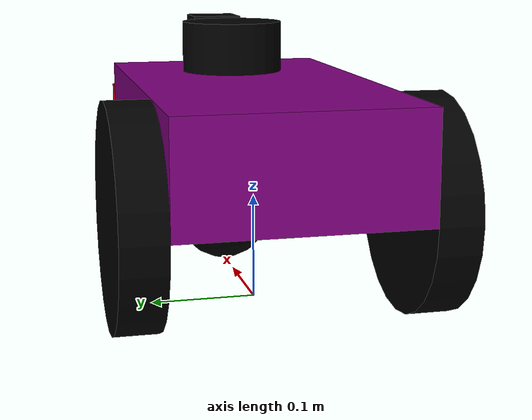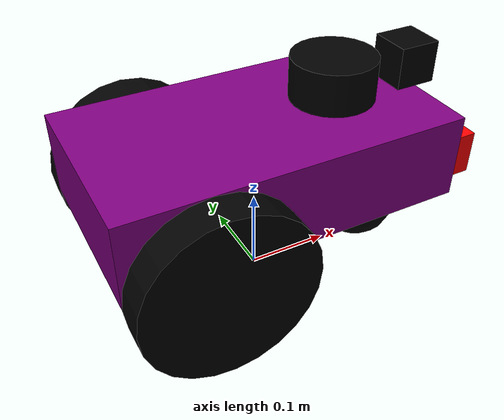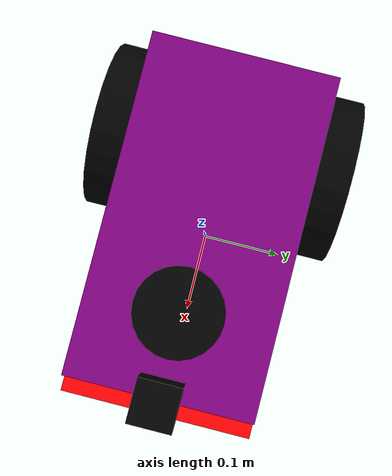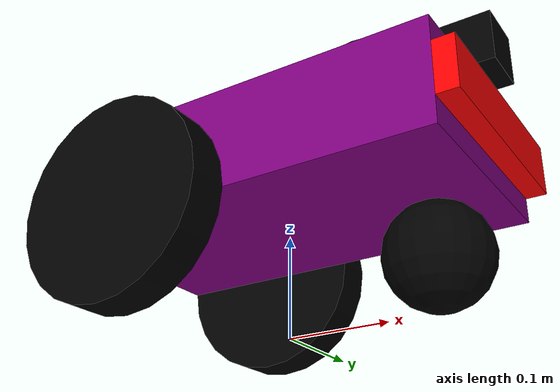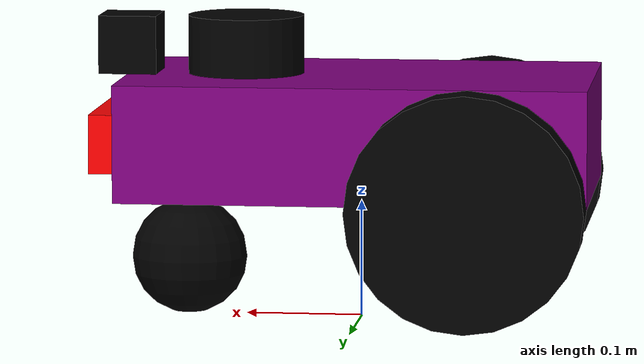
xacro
<?xml version="1.0" ?>
<robot name="com760Bot" xmlns:xacro="https://www.ros.org/wiki/xacro" >

  <xacro:property name="prefix" value="Group6Bot_0"/>

  <material name="purple"><color rgba="0.5 0 0.5 1"/></material>
  <material name="black"><color rgba="0.0 0.0 0.0 1.0"/></material>
  <material name="red"><color rgba="1.0 0.0 0.0 1.0"/></material>

  <xacro:macro name="cylinder_inertia" params="m r h">
    <inertial>
      <mass value="${m}"/>
      <inertia
        ixx="${(m/12)*(3*r*r+h*h)}" ixy="0" ixz="0"
        iyy="${(m/12)*(3*r*r+h*h)}" iyz="0"
        izz="${(m/2)*(r*r)}"/>
    </inertial>
  </xacro:macro>

  <xacro:macro name="box_inertia" params="m w h d">
    <inertial>
      <mass value="${m}"/>
      <inertia
        ixx="${(m/12)*(h*h+d*d)}" ixy="0" ixz="0"
        iyy="${(m/12)*(w*w+d*d)}" iyz="0"
        izz="${(m/12)*(w*w+h*h)}"/>
    </inertial>
  </xacro:macro>

  <link name="${prefix}/base_footprint"/>

  <joint name="base_joint" type="fixed">
    <parent link="${prefix}/base_footprint"/>
    <child link="${prefix}/base_link"/>
    <origin xyz="0 0 0.16" rpy="0 0 0"/>
  </joint>

  <link name="${prefix}/base_link">
    <visual>
      <geometry><box size="0.4 0.22 0.1"/></geometry>
      <material name="purple"/>
    </visual>

    <!-- This is where the collision geometry is used for the physics and the contacts.
         The name attribute is helpful for debugging purposes. -->
    <collision name="base_collision">
      <geometry><box size="0.4 0.22 0.1"/></geometry>
    </collision>

    <!-- The inertia is approximately 5kg for the chassis, which is matching the dimensions. -->
    <xacro:box_inertia m="5.0" w="0.4" h="0.1" d="0.22"/>
  </link>

  <link name="${prefix}/bumper_link">
    <visual>
      <geometry><box size="0.02 0.22 0.05"/></geometry>
      <material name="red"/>
    </visual>
    <collision name="bumper_collision">
      <geometry><box size="0.02 0.22 0.05"/></geometry>
    </collision>
    <xacro:box_inertia m="0.1" w="0.02" h="0.05" d="0.22"/>
  </link>

  <joint name="${prefix}/bumper_joint" type="fixed">
    <parent link="${prefix}/base_link"/>
    <child link="${prefix}/bumper_link"/>
    <origin xyz="0.21 0 0" rpy="0 0 0"/>
  </joint>

  <link name="${prefix}/left_wheel">
    <visual>
      <geometry><cylinder length="0.04" radius="0.1"/></geometry>
      <material name="black"/>
    </visual>
    <collision>
      <geometry><cylinder length="0.04" radius="0.1"/></geometry>
    </collision>
    <xacro:cylinder_inertia m="0.5" r="0.1" h="0.04"/>
  </link>

  <joint name="${prefix}/wheel_left_joint" type="continuous">
    <parent link="${prefix}/base_link"/>
    <child link="${prefix}/left_wheel"/>
    <origin xyz="-0.1 0.13 -0.05" rpy="-1.5708 0 0"/>
    <axis xyz="0 0 1"/>
  </joint>

  <!-- This is the Right wheel being defined with the same structure but it is mirrored in Y axis. -->
  <link name="${prefix}/right_wheel">
    <visual>
      <geometry><cylinder length="0.04" radius="0.1"/></geometry>
      <material name="black"/>
    </visual>
    <collision>
      <geometry><cylinder length="0.04" radius="0.1"/></geometry>
    </collision>
    <xacro:cylinder_inertia m="0.5" r="0.1" h="0.04"/>
  </link>

  <joint name="${prefix}/wheel_right_joint" type="continuous">
    <parent link="${prefix}/base_link"/>
    <child link="${prefix}/right_wheel"/>
    <origin xyz="-0.1 -0.13 -0.05" rpy="-1.5708 0 0"/>
    <axis xyz="0 0 1"/>
  </joint>

  <link name="${prefix}/caster_link">
    <visual>
      <geometry><sphere radius="0.05"/></geometry>
      <material name="black"/>
    </visual>
    <collision>
      <geometry><sphere radius="0.05"/></geometry>
    </collision>

    <!-- This is the inertial being manually specified. -->
    <inertial>
      <mass value="0.1"/>
      <inertia ixx="0.001" ixy="0" ixz="0" iyy="0.001" iyz="0" izz="0.001"/>
    </inertial>
  </link>

  <joint name="${prefix}/caster_joint" type="fixed">
    <parent link="${prefix}/base_link"/>
    <child link="${prefix}/caster_link"/>
    <origin xyz="0.15 0 -0.11" rpy="0 0 0"/>
  </joint>

  <link name="${prefix}/base_scan">
    <visual>
      <geometry><cylinder length="0.05" radius="0.05"/></geometry>
      <material name="black"/>
    </visual>
    <collision>
      <geometry><cylinder length="0.05" radius="0.05"/></geometry>
    </collision>
    <xacro:cylinder_inertia m="0.1" r="0.05" h="0.05"/>
  </link>

  <joint name="${prefix}/scan_joint" type="fixed">
    <parent link="${prefix}/base_link"/>
    <child link="${prefix}/base_scan"/>
    <!-- This is where the lidar is mounted close to the front/top of the base_link. The frame for published LaserScan is later set to the ${prefix}/base_scan. -->
    <origin xyz="0.1 0 0.075" rpy="0 0 0"/>
  </joint>

  <!-- This is where the camera_link is defined, it is a cube for the camera body and the real camera optics are defined in the Gazebo camera sensor. -->
  <link name="${prefix}/camera_link">
    <visual>
      <geometry><box size="0.05 0.05 0.05"/></geometry>
      <material name="black"/>
    </visual>
    <collision>
      <geometry><box size="0.05 0.05 0.05"/></geometry>
    </collision>
    <xacro:box_inertia m="0.1" w="0.05" h="0.05" d="0.05"/>
  </link>

  <joint name="${prefix}/camera_joint" type="fixed">
    <parent link="${prefix}/base_link"/>
    <child link="${prefix}/camera_link"/>
    <origin xyz="0.2 0 0.075" rpy="0 0 0"/>
  </joint>

  <!-- This area is where the Gazebo's specific extensions are defined. -->
  <gazebo reference="${prefix}/camera_link">
    <material>Gazebo/Black</material>

    <sensor type="camera" name="robot_camera">
      <update_rate>30.0</update_rate>

      <camera name="head">
        <horizontal_fov>1.3962634</horizontal_fov> <!-- ~80 degrees in radians being defined. -->

        <image>
          <width>640</width>
          <height>480</height>
          <format>R8G8B8</format>
        </image>

        <!-- This is used for clipping planes which are used for rendering purposes. -->
        <clip>
          <near>0.02</near>
          <far>300</far>
        </clip>

        <!-- This is used for adding gaussian noise, to make the perception more realistic. -->
        <noise>
          <type>gaussian</type>
          <mean>0.0</mean>
          <stddev>0.007</stddev>
        </noise>
      </camera>

      <plugin name="camera_controller" filename="libgazebo_ros_camera.so">
        <alwaysOn>true</alwaysOn>
        <updateRate>0.0</updateRate> <!-- 0.0 means "as fast as possible". -->
        <cameraName>${prefix}/camera</cameraName>
        <imageTopicName>image_raw</imageTopicName>
        <cameraInfoTopicName>camera_info</cameraInfoTopicName>
        <frameName>${prefix}/camera_link</frameName>

        <!-- The remaining parameters are mostly relevant for stereo/distortion model. -->
        <hackBaseline>0.07</hackBaseline>
        <distortionK1>0.0</distortionK1>
        <distortionK2>0.0</distortionK2>
        <distortionK3>0.0</distortionK3>
        <distortionT1>0.0</distortionT1>
        <distortionT2>0.0</distortionT2>
      </plugin>
    </sensor>
  </gazebo>

  <!-- This is where the bumper contact sensor is being defined. It declares a Gazebo contact sensor and then maps it to a ROS topic. -->
  <gazebo reference="${prefix}/bumper_link">
    <material>Gazebo/Red</material>
    <sensor name="main_bumper" type="contact">
      <selfCollide>true</selfCollide>
      <alwaysOn>true</alwaysOn>
      <updateRate>15.0</updateRate>
      <contact>
        <collision>base_link_fixed_joint_lump__bumper_collision_collision_1</collision>
      </contact>

      <plugin name="gazebo_ros_bumper_controller" filename="libgazebo_ros_bumper.so">
        <robotNamespace>${prefix}</robotNamespace>
        <bumperTopicName>bumper_states</bumperTopicName>
        <frameName>${prefix}/bumper_link</frameName>
      </plugin>
    </sensor>
  </gazebo>

  <gazebo reference="${prefix}/base_scan">
    <material>Gazebo/Black</material>
    <sensor type="ray" name="laser">
      <visualize>false</visualize>
      <update_rate>10</update_rate>

      <ray>
        <scan>
          <horizontal>
            <samples>360</samples>
            <min_angle>-3.14</min_angle>
            <max_angle>3.14</max_angle>
          </horizontal>
        </scan>
        <range>
          <min>0.12</min>
          <max>12.0</max>
        </range>
      </ray>

      <plugin name="gazebo_ros_laser" filename="libgazebo_ros_laser.so">
        <robotNamespace>${prefix}</robotNamespace>
        <topicName>scan</topicName>
        <frameName>${prefix}/base_scan</frameName>
      </plugin>
    </sensor>
  </gazebo>

  <!-- This is where the differential drive plugin is being defined. It reads the cmd_vel and then applies the wheel joint velocities. It publishes the
       odom and TF of the nav_msgs/odometry. -->
  <gazebo>
    <plugin name="differential_drive_controller" filename="libgazebo_ros_diff_drive.so">
      <robotNamespace>${prefix}</robotNamespace>
      <leftJoint>${prefix}/wheel_left_joint</leftJoint>
      <rightJoint>${prefix}/wheel_right_joint</rightJoint>

      <wheelSeparation>0.26</wheelSeparation>
      <wheelDiameter>0.2</wheelDiameter>

      <commandTopic>cmd_vel</commandTopic>
      <odometryTopic>odom</odometryTopic>

      <!-- This is defining the frames for odom and base reference. -->
      <odometryFrame>${prefix}/odom</odometryFrame>
      <robotBaseFrame>${prefix}/base_footprint</robotBaseFrame>

      <!-- This is where the TF publication control is being defined. -->
      <publishTf>true</publishTf>
      <publishOdomTF>true</publishOdomTF>
      <publishWheelTF>false</publishWheelTF>

      <updateRate>30.0</updateRate>
      <odometrySource>world</odometrySource>
    </plugin>
  </gazebo>

  <gazebo reference="${prefix}/base_link"><material>Gazebo/Purple</material></gazebo>
  <gazebo reference="${prefix}/left_wheel">
    <material>Gazebo/Black</material>
    <mu1>2.0</mu1>
    <mu2>2.0</mu2>
  </gazebo>
  <gazebo reference="${prefix}/right_wheel">
    <material>Gazebo/Black</material>
    <mu1>2.0</mu1>
    <mu2>2.0</mu2>
  </gazebo>
  <gazebo reference="${prefix}/caster_link">
    <material>Gazebo/Black</material>
    <mu1>0.0</mu1>
    <mu2>0.0</mu2>
  </gazebo>

</robot>
